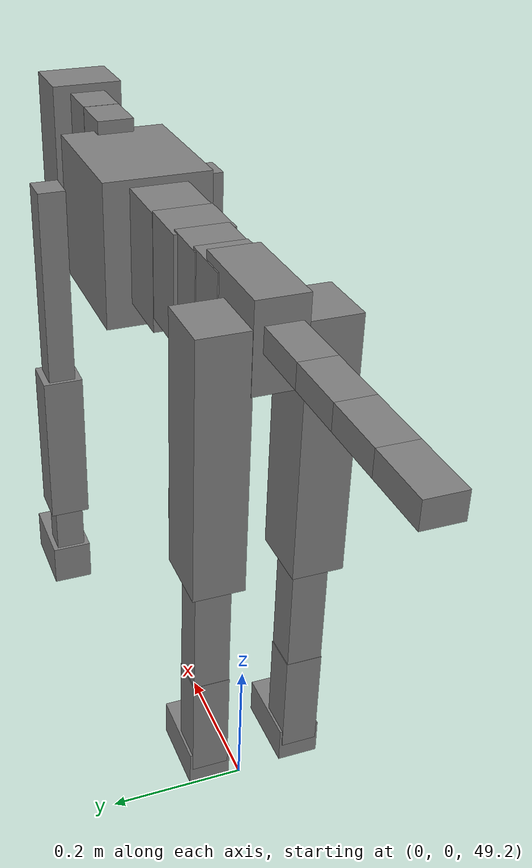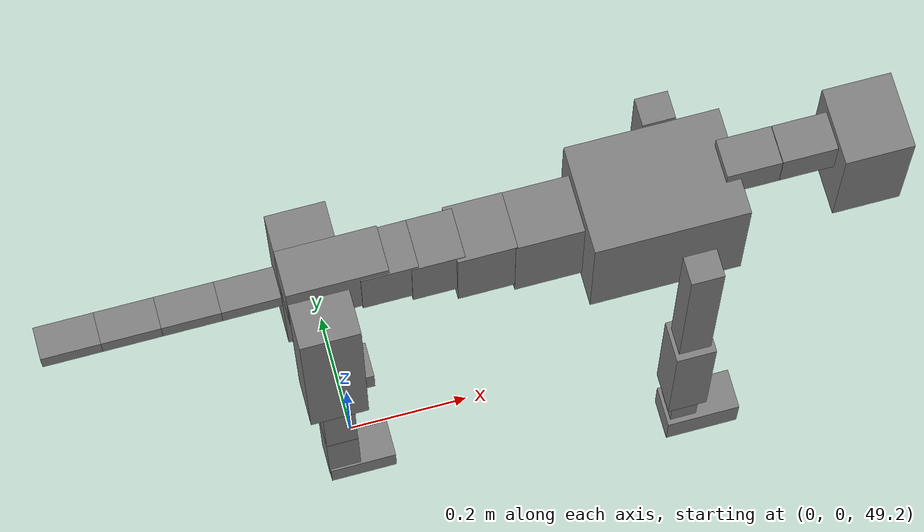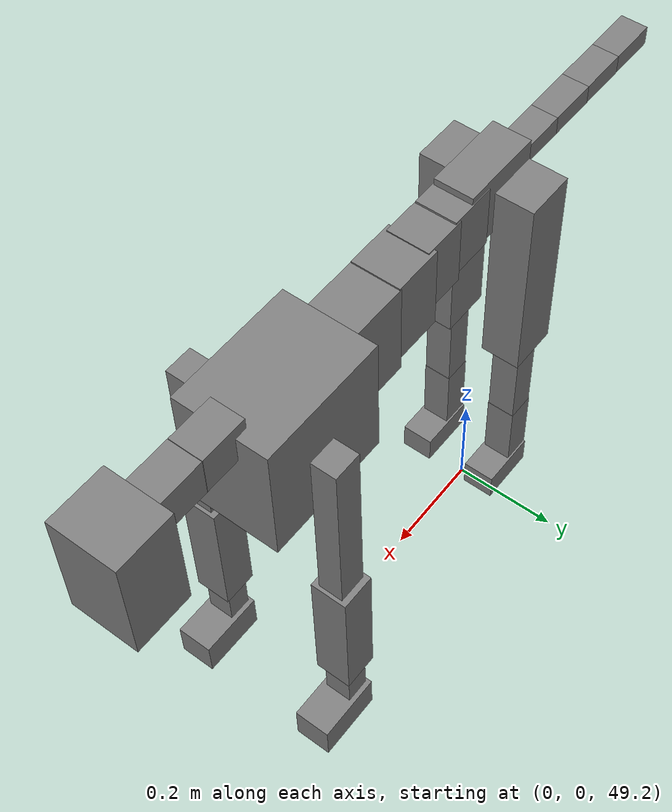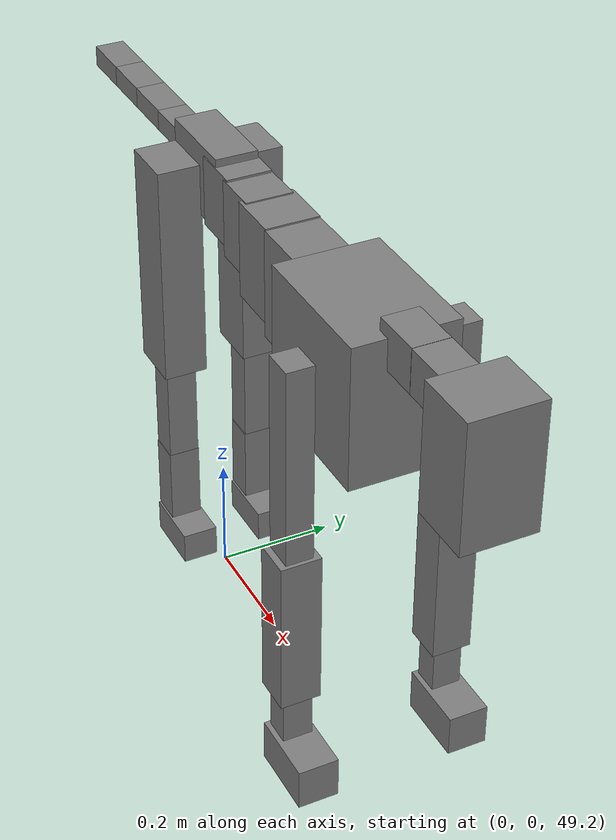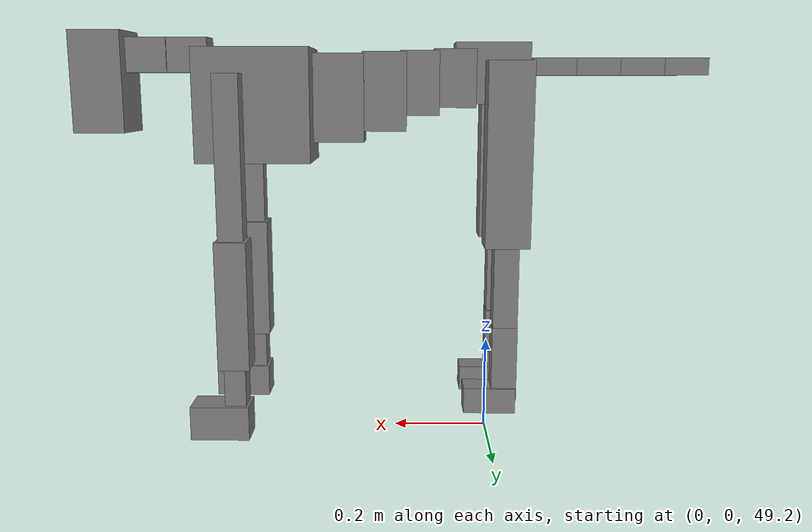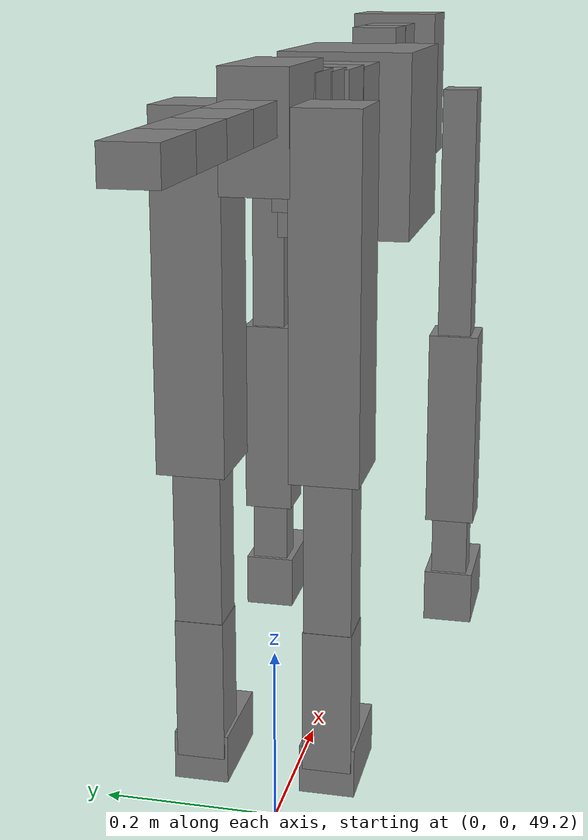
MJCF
<mujoco model="dog">

    <default>
        <joint armature="0.02" stiffness="1" damping="0.2" limited="true"/>
        <geom condim="3" friction="1 0.05 0.05" margin="0.01"/>
        <motor ctrllimited="true" ctrlrange="-1.0 1.0" forcelimited="true" gear="50"/>
    </default>

    <compiler inertiafromgeom="true" angle="radian"/>

    <option timestep="0.016" iterations="50" tolerance="1e-10" solver="Newton" jacobian="dense" cone="pyramidal"/>

    <size nconmax="20000" njmax="60000" nstack="5000000"/>
    <visual>
        <map force="0.1" zfar="30"/>
        <rgba haze="0.15 0.25 0.35 1"/>
        <quality shadowsize="2048"/>
        <global offwidth="800" offheight="800"/>
    </visual>

    <asset>
        <texture type="skybox" builtin="gradient" rgb1="0.3 0.5 0.7" rgb2="0 0 0" width="512" height="512"/>
        <texture name="texplane" type="2d" builtin="checker" rgb1=".2 .3 .4" rgb2=".1 0.15 0.2" width="512" height="512"
                 mark="cross" markrgb=".8 .8 .8"/>
        <texture name="texgeom" type="cube" builtin="flat" mark="cross" width="127" height="1278" rgb1="0.8 0.6 0.4"
                 rgb2="0.8 0.6 0.4" markrgb="1 1 1" random="0.01"/>

        <material name="matplane" reflectance="0.3" texture="texplane" texrepeat="1 1" texuniform="true"/>
        <material name="matgeom" texture="texgeom" texuniform="true" rgba="0.8 0.6 .4 1"/>
    </asset>

    <worldbody>
        <geom name="floor" pos="0 0 0" size="0 0 .25" type="plane" material="matplane" condim="3"/>

        <light directional="false" diffuse=".2 .2 .2" specular="0 0 0" pos="0 0 5" dir="0 0 -1" castshadow="false"/>
        <light mode="targetbodycom" target="torso" directional="false" diffuse=".8 .8 .8" specular="0.3 0.3 0.3"
               pos="0 0 4.0" dir="0 0 -1"/>

        <body name="root" pos="0 0 50">
            <freejoint name="root_1"/>
            <geom type="box" pos="0 0 -0.02" size="0.0774  0.0358  0.063" density="2030"/>

            <body name="spine1" pos="0.054 0 0">
                <joint name="spine1_y" axis="0 1 0" range="0 0.7" limited="true"/>
                <geom type="box" pos="0.02375 0 -0.03" size="0.04375  0.0375  0.05985" density="2030"/>

                <body name="spine2" pos="0.0612 0 0">
                    <joint name="spine2_y" axis="0 1 0" range="-0.15 0.15" limited="true"/>
                    <geom type="box" pos="0.03555  0  -0.04" size="0.04055  0.039  0.06615" density="2030"/>

                    <body name="spine3" pos="0.0730 0 0">
                        <joint name="spine3_y" axis="0 1 0" range="-0.15 0.15" limited="true"/>
                        <geom type="box" pos="0.03555  0  -0.057" size="0.04555  0.0445  0.081" density="2030"/>

                        <body name="spine4" pos="0.0780 0 0">
                            <joint name="spine4_y" axis="0 1 0" range="-0.15 0.15" limited="true"/>
                            <geom type="box" pos="0.05265  0  -0.07" size="0.05265  0.045  0.09135" density="2030"/>

                            <body name="torso" pos="0.1082 0 0">
                                <joint name="torso_y" axis="0 1 0" range="-0.15 0.15" limited="true"/>
                                <geom type="box" pos="0.11925  0  -0.085" size="0.11925  0.085  0.11745"
                                      density="2030"/>

                                <body name="neck1" pos="0.2160  0   0.0180">
                                    <joint name="neck1_y" axis="0 1 0" range="-1.2  -1" limited="true"/>
                                    <geom type="box" pos="0.0423  0  0" size="0.0423  0.03  0.036" density="2325"/>

                                    <body name="neck2" pos="0.0853  0  0">
                                        <joint name="neck2_y" axis="0 1 0" range="0.1  0" limited="true"/>
                                        <geom type="box" pos="0.0423  0  0" size="0.0423  0.03  0.036" density="2325"/>

                                        <body name="head" pos="0.0853  0  0">
                                            <joint name="head_y" axis="0 1 0" range="-0.3  -0.2" limited="true"/>
                                            <geom type="box" pos="0.0531  0  -0.055" size="0.0531  0.06  0.1044"
                                                  density="4030"/>

                                        </body>
                                    </body>
                                </body>

                                <body name="front_shoulder" pos="0.156  0   -0.0480">
                                    <joint name="front_shoulder_y" axis="0 1 0" range="-1 1.5" limited="true"/>
                                    <geom type="box" pos="0 0.13 -0.1522" size="0.0259  0.0222  0.1789" density="1158"/>
                                    <geom type="box" pos="0 -0.13 -0.1522" size="0.0259  0.0222  0.1789"
                                          density="1158"/>

                                    <body name="front_elbow" pos="0  0  -0.3045">
                                        <joint name="front_elbow_y" axis="0 1 0" range="-2 0" limited="true"/>
                                        <geom type="box" pos="0 0.13 -0.1331" size="0.0323  0.0330  0.1331"
                                              density="1081"/>
                                        <geom type="box" pos="0 -0.13 -0.1331" size="0.0323  0.0330  0.1331"
                                              density="1081"/>

                                        <body name="front_wrist" pos="0  0  -0.2662">
                                            <joint name="front_wrist_y" axis="0 1 0" range="-0.2 0" limited="true"/>
                                            <geom type="box" pos="0 0.13 -0.0476" size="0.0220  0.0244  0.0607"
                                                  density="1664"/>
                                            <geom type="box" pos="0 -0.13 -0.0476" size="0.0220  0.0244  0.0607"
                                                  density="1664"/>

                                            <body name="front_finger_end" pos="0  0  -0.0951">
                                                <joint name="front_finger_y" axis="0 1 0" range="-0.4 1"
                                                       limited="true"/>
                                                <geom type="box" pos="0.0332  0.13  -0.0207"
                                                      size="0.0609  0.0332  0.0357" density="1515"/>
                                                <geom type="box" pos="0.0332  -0.13  -0.0207"
                                                      size="0.0609  0.0332  0.0357" density="1515"/>

                                            </body>

                                        </body>
                                    </body>
                                </body>

                            </body>
                        </body>
                    </body>
                </body>
            </body>

            <body name="back_hip" pos="-0.03 0 -0.018">
                <joint name="back_hip_y" axis="0 1 0" range="-1.5 0.3" limited="true"/>
                <geom type="box" pos="0 0.07 -0.1667" size="0.0465  0.0365  0.1895" density="1154"/>
                <geom type="box" pos="0 -0.07 -0.1667" size="0.0465  0.0365  0.1895" density="1154"/>

                <body name="back_knee" pos="0  0  -0.3335">
                    <joint name="back_knee_y" axis="0 1 0" range="0 2.8" limited="true"/>
                    <geom type="box" pos="0 0.07 -0.1026" size="0.0259  0.0256  0.1181" density="1227"/>
                    <geom type="box" pos="0 -0.07 -0.1026" size="0.0259  0.0256  0.1181" density="1227"/>

                    <body name="back_ankle" pos="0  0  -0.2052">
                        <joint name="back_ankle_y" axis="0 1 0" range="-2.2 0" limited="true"/>
                        <geom type="box" pos="0 0.07 -0.0681" size="0.0264  0.0264  0.0794" density="1284"/>
                        <geom type="box" pos="0 -0.07 -0.0681" size="0.0264  0.0264  0.0794" density="1284"/>

                        <body name="back_toe_end" pos="0  0  -0.1362">
                            <joint name="back_toe_y" axis="0 1 0" range="-0.4 1" limited="true"/>
                            <geom type="box" pos="0.0299  0.07  -0.0122" size="0.0548  0.0299  0.0272" density="1515"/>
                            <geom type="box" pos="0.0299  -0.07  -0.0122" size="0.0548  0.0299  0.0272" density="1515"/>

                        </body>
                    </body>
                </body>
            </body>

            <body name="tail1" pos="-0.074 0 -0.006">
                <joint name="tail1_y" axis="0 1 0" range="-0.2 0.2" limited="true"/>
                <geom type="box" pos="-0.0536  0  0" size="0.045  0.025  0.0175" density="1587"/>

                <body name="tail2" pos="-0.09 0 0">
                    <joint name="tail2_y" axis="0 1 0" range="-0.2 0.2" limited="true"/>
                    <geom type="box" pos="-0.0536  0  0" size="0.045  0.025  0.0175" density="1587"/>

                    <body name="tail3" pos="-0.09 0 0">
                        <joint name="tail3_y" axis="0 1 0" range="-0.2 0.2" limited="true"/>
                        <geom type="box" pos="-0.0536  0  0" size="0.045  0.025  0.0175" density="1587"/>

                        <body name="tail4" pos="-0.09 0 0">
                            <joint name="tail4_y" axis="0 1 0" range="-0.2 0.2" limited="true"/>
                            <geom type="box" pos="-0.0536  0  0" size="0.045  0.025  0.0175" density="1587"/>

                        </body>
                    </body>
                </body>
            </body>
        </body>
    </worldbody>

    <actuator>
        <motor joint="spine1_y" forcerange="-150 150     "/>
        <motor joint="spine2_y" forcerange="-150 150     "/>
        <motor joint="spine3_y" forcerange="-150 150     "/>
        <motor joint="spine4_y" forcerange="-150 150     "/>
        <motor joint="torso_y" forcerange="-150 150     "/>
        <motor joint="neck1_y" forcerange="-100 100       "/>
        <motor joint="neck2_y" forcerange="-100 100       "/>
        <motor joint="head_y" forcerange="-150 150       "/>
        <motor joint="front_shoulder_y" forcerange="-132.82 114.87"/>
        <motor joint="front_elbow_y" forcerange="-194.15 145.71"/>
        <motor joint="front_wrist_y" forcerange="-125.63 69.49"/>
        <motor joint="front_finger_y" forcerange="-86.71 50.34"/>
        <motor joint="back_hip_y" forcerange="-371.32 314.90"/>
        <motor joint="back_knee_y" forcerange="-218.30 353.49"/>
        <motor joint="back_angle_y" forcerange="-202.09 120.97"/>
        <motor joint="back_toe_y" forcerange="-135.88 23.18"/>
        <motor joint="tail1_y" forcerange="-50 50     "/>
        <motor joint="tail2_y" forcerange="-50 50     "/>
        <motor joint="tail3_y" forcerange="-50 50     "/>
        <motor joint="tail4_y" forcerange="-50 50     "/>
    </actuator>
</mujoco>
